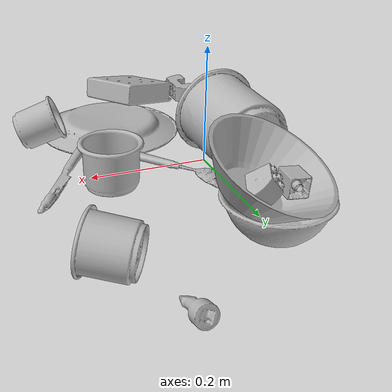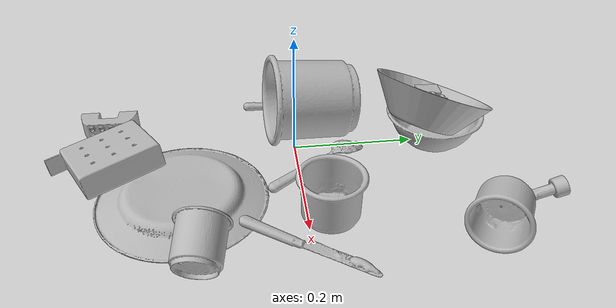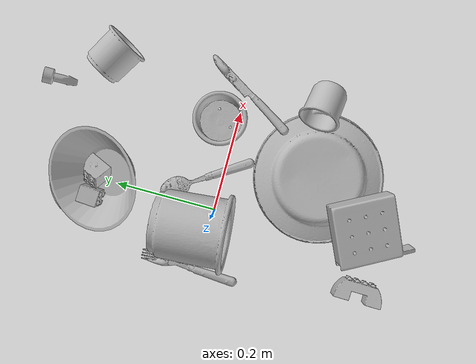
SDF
<sdf version="1.4">
  <world name="default">
    <light name="light1" type="point">
      <pose>0 0 1 0 0 0</pose>
      <diffuse>3 3 3 1</diffuse>
      <specular>3 3 3 1</specular>
    </light>
    <light name="light2" type="point">
      <pose>0 0.5 2 0 0 0</pose>
      <diffuse>1 1 1 1</diffuse>
      <specular>1 1 1 1</specular>
    </light>
    <light name="light3" type="point">
      <pose>0 0.5 2 0 0 0</pose>
      <diffuse>3 3 3 1</diffuse>
      <specular>3 3 3 1</specular>
    </light>
    <scene>
      <ambient>0.7 0.7 0.7</ambient>
    </scene>
    <model name="plate1">
      <link name="link_plate1">
        <collision name="default">
          <geometry>
            <mesh>
              <uri>model://plate/collision_meshes/collision.obj</uri>
              <scale>1.0 1.0 1.0</scale>
            </mesh>
          </geometry>
          <surface>
            <friction>
              <ode>
                <mu>0.5</mu>
                <mu2>0.5</mu2>
              </ode>
            </friction>
          <contact>
        <ode>
            <max_vel>0</max_vel>
            <min_depth>0.0001</min_depth>
            <kp>1e8</kp>
        </ode>
    </contact></surface>
        </collision>
        <visual name="default">
          <geometry>
            <mesh>
              <uri>model://plate/visual_meshes/visual.dae</uri>
              <scale>1.0 1.0 1.0</scale>
            </mesh>
          </geometry>
        </visual>
        <inertial>
          <mass>0.17760059237480164</mass>
          <pose>-0.0006044625188224018 0.0002782586379908025 -0.0010561981471255422 0.0022187804018266454 -0.0032254852757079067 0.45261158451631034</pose>
          <inertia>
            <ixx>0.0008308187</ixx>
            <iyy>0.0008228725</iyy>
            <izz>0.0016249575</izz>
            <ixy>0</ixy>
            <ixz>0</ixz>
            <iyz>0</iyz>
          </inertia>
        </inertial>
      </link>
      <pose>0.11679919809103012 -0.18314021825790405 0.013925986364483833 3.126007819919113 -0.00740104914510412 1.5772590364508257</pose>
    </model>
    <model name="cup1">
      <link name="link_cup1">
        <collision name="default">
          <geometry>
            <mesh>
              <uri>model://e_cups/collision_meshes/collision.obj</uri>
              <scale>2.0 2.0 2.0</scale>
            </mesh>
          </geometry>
          <surface>
            <friction>
              <ode>
                <mu>0.5</mu>
                <mu2>0.5</mu2>
              </ode>
            </friction>
          <contact>
        <ode>
            <max_vel>0</max_vel>
            <min_depth>0.0001</min_depth>
            <kp>1e8</kp>
        </ode>
    </contact></surface>
        </collision>
        <visual name="default">
          <geometry>
            <mesh>
              <uri>model://e_cups/visual_meshes/visual.dae</uri>
              <scale>2.0 2.0 2.0</scale>
            </mesh>
          </geometry>
        </visual>
        <inertial>
          <mass>0.744063675403595</mass>
          <pose>0.002271148143336177 0.005759569350630045 -0.007765938527882099 0.6952380949131286 0.08767384491187986 -0.5235246841726229</pose>
          <inertia>
            <ixx>0.0026243117</ixx>
            <iyy>0.0027427815</iyy>
            <izz>0.0025091455</izz>
            <ixy>0</ixy>
            <ixz>0</ixz>
            <iyz>0</iyz>
          </inertia>
        </inertial>
      </link>
      <pose>-0.03839180991053581 0.03166137635707855 0.06993690133094788 1.40219443616002 -1.0319082567683557 0.2345499064982175</pose>
    </model>
    <model name="silverware1">
      <link name="link_silverware1">
        <collision name="default">
          <geometry>
            <mesh>
              <uri>model://knife/collision_meshes/collision.obj</uri>
              <scale>1.0 1.0 1.0</scale>
            </mesh>
          </geometry>
          <surface>
            <friction>
              <ode>
                <mu>0.5</mu>
                <mu2>0.5</mu2>
              </ode>
            </friction>
          <contact>
        <ode>
            <max_vel>0</max_vel>
            <min_depth>0.0001</min_depth>
            <kp>1e8</kp>
        </ode>
    </contact></surface>
        </collision>
        <visual name="default">
          <geometry>
            <mesh>
              <uri>model://knife/visual_meshes/visual.dae</uri>
              <scale>1.0 1.0 1.0</scale>
            </mesh>
          </geometry>
        </visual>
        <inertial>
          <mass>0.01882243901491165</mass>
          <pose>-0.02378525212407112 0.001527512213215232 5.062019408796914e-05 0.07305335090357784 0.017248422780830937 -0.007409828138098005</pose>
          <inertia>
            <ixx>5.342572e-07</ixx>
            <iyy>7.231275e-05</iyy>
            <izz>7.248483e-05</izz>
            <ixy>0</ixy>
            <ixz>0</ixz>
            <iyz>0</iyz>
          </inertia>
        </inertial>
      </link>
      <pose>0.23913712799549103 -0.006668427959084511 0.009422900155186653 3.1120978605023715 0.07538595692219503 1.0224091718611883</pose>
    </model>
    <model name="silverware2">
      <link name="link_silverware2">
        <collision name="default">
          <geometry>
            <mesh>
              <uri>model://fork/collision_meshes/collision.obj</uri>
              <scale>1.0 1.0 1.0</scale>
            </mesh>
          </geometry>
          <surface>
            <friction>
              <ode>
                <mu>0.5</mu>
                <mu2>0.5</mu2>
              </ode>
            </friction>
          <contact>
        <ode>
            <max_vel>0</max_vel>
            <min_depth>0.0001</min_depth>
            <kp>1e8</kp>
        </ode>
    </contact></surface>
        </collision>
        <visual name="default">
          <geometry>
            <mesh>
              <uri>model://fork/visual_meshes/visual.dae</uri>
              <scale>1.0 1.0 1.0</scale>
            </mesh>
          </geometry>
        </visual>
        <inertial>
          <mass>0.02216319739818573</mass>
          <pose>-0.029570037499070168 0.0004658822435885668 0.0003218860365450382 -0.01355085274048469 -0.010977831838055618 0.014453900749429992</pose>
          <inertia>
            <ixx>7.769453e-07</ixx>
            <iyy>5.7861733e-05</iyy>
            <izz>5.8209254e-05</izz>
            <ixy>0</ixy>
            <ixz>0</ixz>
            <iyz>0</iyz>
          </inertia>
        </inertial>
      </link>
      <pose>-0.12278475612401962 0.017534397542476654 0.0057403333485126495 -0.1894365719865876 0.02422682731966873 1.5204353295943178</pose>
    </model>
    <model name="silverware3">
      <link name="link_silverware3">
        <collision name="default">
          <geometry>
            <mesh>
              <uri>model://spoon/collision_meshes/collision.obj</uri>
              <scale>1.0 1.0 1.0</scale>
            </mesh>
          </geometry>
          <surface>
            <friction>
              <ode>
                <mu>0.5</mu>
                <mu2>0.5</mu2>
              </ode>
            </friction>
          <contact>
        <ode>
            <max_vel>0</max_vel>
            <min_depth>0.0001</min_depth>
            <kp>1e8</kp>
        </ode>
    </contact></surface>
        </collision>
        <visual name="default">
          <geometry>
            <mesh>
              <uri>model://spoon/visual_meshes/visual.dae</uri>
              <scale>1.0 1.0 1.0</scale>
            </mesh>
          </geometry>
        </visual>
        <inertial>
          <mass>0.0369713120162487</mass>
          <pose>-0.005526314955204725 -0.001603417214937508 -0.0007271651993505657 0.03521850370393077 -0.03906584809093457 0.006150612862082015</pose>
          <inertia>
            <ixx>2.0564048e-06</ixx>
            <iyy>0.00014067463</iyy>
            <izz>0.00014168874</izz>
            <ixy>0</ixy>
            <ixz>0</ixz>
            <iyz>0</iyz>
          </inertia>
        </inertial>
      </link>
      <pose>0.06100596860051155 0.03249351680278778 0.010133735835552216 3.1049451813998887 -0.06197687042811529 2.1562712947677927</pose>
    </model>
    <model name="cup3">
      <link name="link_cup3">
        <collision name="default">
          <geometry>
            <mesh>
              <uri>model://h_cups/collision_meshes/collision.obj</uri>
              <scale>1.0 1.0 1.0</scale>
            </mesh>
          </geometry>
          <surface>
            <friction>
              <ode>
                <mu>0.5</mu>
                <mu2>0.5</mu2>
              </ode>
            </friction>
          <contact>
        <ode>
            <max_vel>0</max_vel>
            <min_depth>0.0001</min_depth>
            <kp>1e8</kp>
        </ode>
    </contact></surface>
        </collision>
        <visual name="default">
          <geometry>
            <mesh>
              <uri>model://h_cups/visual_meshes/visual.dae</uri>
              <scale>1.0 1.0 1.0</scale>
            </mesh>
          </geometry>
        </visual>
        <inertial>
          <mass>0.07650958746671677</mass>
          <pose>-2.7029362172470428e-05 0.0002301867789356038 -0.0018405390437692404 -0.02436239906192228 0.06545228304852578 0.1288505673262376</pose>
          <inertia>
            <ixx>9.880857e-05</ixx>
            <iyy>9.7629454e-05</iyy>
            <izz>0.0001036231</izz>
            <ixy>0</ixy>
            <ixz>0</ixz>
            <iyz>0</iyz>
          </inertia>
        </inertial>
      </link>
      <pose>0.2376878708600998 0.2630521059036255 0.04196355491876602 1.4484475429257866 -0.5170615412864252 1.0728970049431497</pose>
    </model>
    <model name="cup4">
      <link name="link_cup4">
        <collision name="default">
          <geometry>
            <mesh>
              <uri>model://f_cups/collision_meshes/collision.obj</uri>
              <scale>1.0 1.0 1.0</scale>
            </mesh>
          </geometry>
          <surface>
            <friction>
              <ode>
                <mu>0.5</mu>
                <mu2>0.5</mu2>
              </ode>
            </friction>
          <contact>
        <ode>
            <max_vel>0</max_vel>
            <min_depth>0.0001</min_depth>
            <kp>1e8</kp>
        </ode>
    </contact></surface>
        </collision>
        <visual name="default">
          <geometry>
            <mesh>
              <uri>model://f_cups/visual_meshes/visual.dae</uri>
              <scale>1.0 1.0 1.0</scale>
            </mesh>
          </geometry>
        </visual>
        <inertial>
          <mass>0.06643713265657425</mass>
          <pose>-0.003171468386426568 -0.0006240070797502995 -0.003655537962913513 0.7862285241405351 -0.26079358215919657 -0.18237309734404591</pose>
          <inertia>
            <ixx>6.2452695e-05</ixx>
            <iyy>6.551358e-05</iyy>
            <izz>6.820148e-05</izz>
            <ixy>0</ixy>
            <ixz>0</ixz>
            <iyz>0</iyz>
          </inertia>
        </inertial>
      </link>
      <pose>0.2540886402130127 -0.15193000435829163 0.04262273386120796 -0.902920224474217 -0.958462906400373 0.8210936944809862</pose>
    </model>
    <model name="cup5">
      <link name="link_cup5">
        <collision name="default">
          <geometry>
            <mesh>
              <uri>model://j_cups/collision_meshes/collision.obj</uri>
              <scale>1.0 1.0 1.0</scale>
            </mesh>
          </geometry>
          <surface>
            <friction>
              <ode>
                <mu>0.5</mu>
                <mu2>0.5</mu2>
              </ode>
            </friction>
          <contact>
        <ode>
            <max_vel>0</max_vel>
            <min_depth>0.0001</min_depth>
            <kp>1e8</kp>
        </ode>
    </contact></surface>
        </collision>
        <visual name="default">
          <geometry>
            <mesh>
              <uri>model://j_cups/visual_meshes/visual.dae</uri>
              <scale>1.0 1.0 1.0</scale>
            </mesh>
          </geometry>
        </visual>
        <inertial>
          <mass>0.12178023159503937</mass>
          <pose>0.0006164865335449576 0.000539897009730339 -0.001347901183180511 0.03030406613159603 0.03757978252187804 0.4386981755119238</pose>
          <inertia>
            <ixx>0.0001788119</ixx>
            <iyy>0.00018067128</iyy>
            <izz>0.00020613305</izz>
            <ixy>0</ixy>
            <ixz>0</ixz>
            <iyz>0</iyz>
          </inertia>
        </inertial>
      </link>
      <pose>0.17397093772888184 0.03421706333756447 0.037988997995853424 6.329800600335393e-09 -3.528521064969445e-08 0.991435648267829</pose>
    </model>
    <model name="bowl1">
      <link name="link_bowl1">
        <collision name="default">
          <geometry>
            <mesh>
              <uri>model://bowl/collision_meshes/collision.obj</uri>
              <scale>1.0 1.0 1.0</scale>
            </mesh>
          </geometry>
          <surface>
            <friction>
              <ode>
                <mu>0.5</mu>
                <mu2>0.5</mu2>
              </ode>
            </friction>
          <contact>
        <ode>
            <max_vel>0</max_vel>
            <min_depth>0.0001</min_depth>
            <kp>1e8</kp>
        </ode>
    </contact></surface>
        </collision>
        <visual name="default">
          <geometry>
            <mesh>
              <uri>model://bowl/visual_meshes/visual.dae</uri>
              <scale>1.0 1.0 1.0</scale>
            </mesh>
          </geometry>
        </visual>
        <inertial>
          <mass>0.07745425403118134</mass>
          <pose>0.0002044533030129969 -0.001030205748975277 -0.0008042643312364817 -0.015764104528614948 0.014546761750555465 0.7140386532433999</pose>
          <inertia>
            <ixx>0.00017791858</ixx>
            <iyy>0.0001739432</iyy>
            <izz>0.00029932024</izz>
            <ixy>0</ixy>
            <ixz>0</ixz>
            <iyz>0</iyz>
          </inertia>
        </inertial>
      </link>
      <pose>-0.0024255230091512203 0.23875419795513153 0.02778945490717888 0.00022995264296320396 -5.1860583757105875e-05 1.6019802854721907</pose>
    </model>
    <model name="bowl2">
      <link name="link_bowl2">
        <collision name="default">
          <geometry>
            <mesh>
              <uri>model://bowl_a/collision_meshes/collision.obj</uri>
              <scale>1.0 1.0 1.0</scale>
            </mesh>
          </geometry>
          <surface>
            <friction>
              <ode>
                <mu>0.5</mu>
                <mu2>0.5</mu2>
              </ode>
            </friction>
          <contact>
        <ode>
            <max_vel>0</max_vel>
            <min_depth>0.0001</min_depth>
            <kp>1e8</kp>
        </ode>
    </contact></surface>
        </collision>
        <visual name="default">
          <geometry>
            <mesh>
              <uri>model://bowl_a/visual_meshes/visual.dae</uri>
              <scale>1.0 1.0 1.0</scale>
            </mesh>
          </geometry>
        </visual>
        <inertial>
          <mass>0.3088552951812744</mass>
          <pose>0.00027867488097399473 4.730938235297799e-05 -0.0013765291078016162 -0.0009805400563029818 -0.0010938222386440513 -0.19123616665791646</pose>
          <inertia>
            <ixx>0.0008793254</ixx>
            <iyy>0.00088472397</iyy>
            <izz>0.0015639137</izz>
            <ixy>0</ixy>
            <ixz>0</ixz>
            <iyz>0</iyz>
          </inertia>
        </inertial>
      </link>
      <pose>0.011241300962865353 0.21939049661159515 0.07444055378437042 -0.3780630130303651 -0.29467316781103864 0.08996221834635114</pose>
    </model>
    <model name="toy1">
      <link name="link_toy1">
        <collision name="default">
          <geometry>
            <mesh>
              <uri>model://nine_hole_peg_test/collision_meshes/collision.obj</uri>
              <scale>1.0 1.0 1.0</scale>
            </mesh>
          </geometry>
          <surface>
            <friction>
              <ode>
                <mu>0.5</mu>
                <mu2>0.5</mu2>
              </ode>
            </friction>
          <contact>
        <ode>
            <max_vel>0</max_vel>
            <min_depth>0.0001</min_depth>
            <kp>1e8</kp>
        </ode>
    </contact></surface>
        </collision>
        <visual name="default">
          <geometry>
            <mesh>
              <uri>model://nine_hole_peg_test/visual_meshes/visual.dae</uri>
              <scale>1.0 1.0 1.0</scale>
            </mesh>
          </geometry>
        </visual>
        <inertial>
          <mass>0.6997236609458923</mass>
          <pose>-0.004617386497557163 -0.009647613391280174 2.6460686058271676e-05 -0.0014666798725883532 0.0007194177661592421 -0.634241755630697</pose>
          <inertia>
            <ixx>0.001094133</ixx>
            <iyy>0.0010215805</iyy>
            <izz>0.0019172435</izz>
            <ixy>0</ixy>
            <ixz>0</ixz>
            <iyz>0</iyz>
          </inertia>
        </inertial>
      </link>
      <pose>0.04227433353662491 -0.30295348167419434 0.03453385457396507 -0.08951312322781911 0.19264142342520688 -2.6717001030703913</pose>
    </model>
    <model name="toy2">
      <link name="link_toy2">
        <collision name="default">
          <geometry>
            <mesh>
              <uri>model://b_lego_duplo/collision_meshes/collision.obj</uri>
              <scale>1.0 1.0 1.0</scale>
            </mesh>
          </geometry>
          <surface>
            <friction>
              <ode>
                <mu>0.5</mu>
                <mu2>0.5</mu2>
              </ode>
            </friction>
          <contact>
        <ode>
            <max_vel>0</max_vel>
            <min_depth>0.0001</min_depth>
            <kp>1e8</kp>
        </ode>
    </contact></surface>
        </collision>
        <visual name="default">
          <geometry>
            <mesh>
              <uri>model://b_lego_duplo/visual_meshes/visual.dae</uri>
              <scale>1.0 1.0 1.0</scale>
            </mesh>
          </geometry>
        </visual>
        <inertial>
          <mass>0.036269694566726685</mass>
          <pose>-0.00011053054186049849 -9.152130587608553e-06 0.0019294297089800239 -0.03749458994465856 -0.026354447033388347 0.4518895757464325</pose>
          <inertia>
            <ixx>7.4228647e-06</ixx>
            <iyy>7.4727645e-06</iyy>
            <izz>6.6135317e-06</izz>
            <ixy>0</ixy>
            <ixz>0</ixz>
            <iyz>0</iyz>
          </inertia>
        </inertial>
      </link>
      <pose>-0.02949570305645466 0.22935046255588531 0.06669796258211136 -1.3410455849043228 -1.489849118922248 2.8467018500916765</pose>
    </model>
    <model name="toy3">
      <link name="link_toy3">
        <collision name="default">
          <geometry>
            <mesh>
              <uri>model://e_lego_duplo/collision_meshes/collision.obj</uri>
              <scale>1.0 1.0 1.0</scale>
            </mesh>
          </geometry>
          <surface>
            <friction>
              <ode>
                <mu>0.5</mu>
                <mu2>0.5</mu2>
              </ode>
            </friction>
          <contact>
        <ode>
            <max_vel>0</max_vel>
            <min_depth>0.0001</min_depth>
            <kp>1e8</kp>
        </ode>
    </contact></surface>
        </collision>
        <visual name="default">
          <geometry>
            <mesh>
              <uri>model://e_lego_duplo/visual_meshes/visual.dae</uri>
              <scale>1.0 1.0 1.0</scale>
            </mesh>
          </geometry>
        </visual>
        <inertial>
          <mass>0.09994293004274368</mass>
          <pose>0.0003256055060774088 0.00023485402925871313 0.0019521453650668263 -0.0225675226805428 -6.825163911406593e-05 -0.00762515763197677</pose>
          <inertia>
            <ixx>2.08414e-05</ixx>
            <iyy>8.553845e-05</iyy>
            <izz>8.329725e-05</izz>
            <ixy>0</ixy>
            <ixz>0</ixz>
            <iyz>0</iyz>
          </inertia>
        </inertial>
      </link>
      <pose>-0.07661309838294983 -0.31502577662467957 0.016279418021440506 1.5786392715644084 -0.004768469223222268 1.5541018296737472</pose>
    </model>
    <model name="toy4">
      <link name="link_toy4">
        <collision name="default">
          <geometry>
            <mesh>
              <uri>model://d_lego_duplo/collision_meshes/collision.obj</uri>
              <scale>1.0 1.0 1.0</scale>
            </mesh>
          </geometry>
          <surface>
            <friction>
              <ode>
                <mu>0.5</mu>
                <mu2>0.5</mu2>
              </ode>
            </friction>
          <contact>
        <ode>
            <max_vel>0</max_vel>
            <min_depth>0.0001</min_depth>
            <kp>1e8</kp>
        </ode>
    </contact></surface>
        </collision>
        <visual name="default">
          <geometry>
            <mesh>
              <uri>model://d_lego_duplo/visual_meshes/visual.dae</uri>
              <scale>1.0 1.0 1.0</scale>
            </mesh>
          </geometry>
        </visual>
        <inertial>
          <mass>0.04219998046755791</mass>
          <pose>0.0028305635787546635 0.00016366135969292372 0.0008589813369326293 0.08010947906167593 -0.38355230128712514 0.001029700717632254</pose>
          <inertia>
            <ixx>8.169298e-06</ixx>
            <iyy>1.1594444e-05</iyy>
            <izz>1.1181217e-05</izz>
            <ixy>0</ixy>
            <ixz>0</ixz>
            <iyz>0</iyz>
          </inertia>
        </inertial>
      </link>
      <pose>0.015864336863160133 0.23585325479507446 0.06968238949775696 0.9695960186243041 -0.23802436051345088 -1.9521405177280475</pose>
    </model>
    <model name="toy5">
      <link name="link_toy5">
        <collision name="default">
          <geometry>
            <mesh>
              <uri>model://e_toy_airplane/collision_meshes/collision.obj</uri>
              <scale>1.0 1.0 1.0</scale>
            </mesh>
          </geometry>
          <surface>
            <friction>
              <ode>
                <mu>0.5</mu>
                <mu2>0.5</mu2>
              </ode>
            </friction>
          <contact>
        <ode>
            <max_vel>0</max_vel>
            <min_depth>0.0001</min_depth>
            <kp>1e8</kp>
        </ode>
    </contact></surface>
        </collision>
        <visual name="default">
          <geometry>
            <mesh>
              <uri>model://e_toy_airplane/visual_meshes/visual.dae</uri>
              <scale>1.0 1.0 1.0</scale>
            </mesh>
          </geometry>
        </visual>
        <inertial>
          <mass>0.01083444245159626</mass>
          <pose>0.00011740464105969295 -2.2482989152194932e-05 -0.011187201365828514 0.005518500665833105 0.009228299677984822 0.1504140594290799</pose>
          <inertia>
            <ixx>3.3067965e-06</ixx>
            <iyy>3.2729695e-06</iyy>
            <izz>9.938221e-07</izz>
            <ixy>0</ixy>
            <ixz>0</ixz>
            <iyz>0</iyz>
          </inertia>
        </inertial>
      </link>
      <pose>0.17083138227462769 0.36218366026878357 0.010301489382982254 -2.992723158376533 -1.2785117258420826 -1.6857169366412565</pose>
    </model>
  <physics type="ode">
      <max_contacts>50</max_contacts>
      <ode>
        <solver>
          <type>quick</type>
          <iters>75</iters>
        </solver>
        <constraints>
          <contact_max_correcting_vel>0</contact_max_correcting_vel>
          <contact_surface_layer>0</contact_surface_layer>
        </constraints>
      </ode>
    </physics></world>
</sdf>
